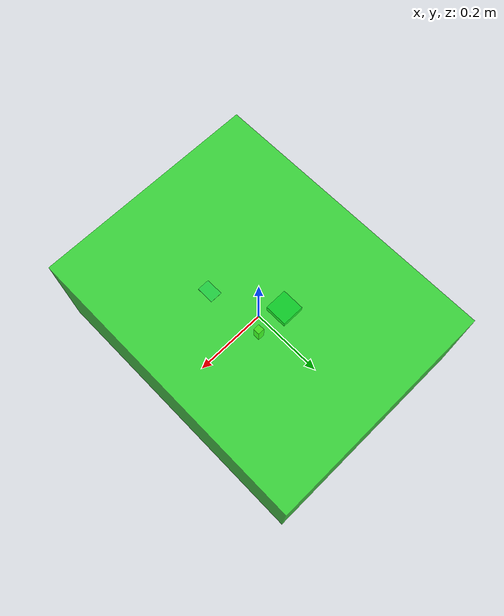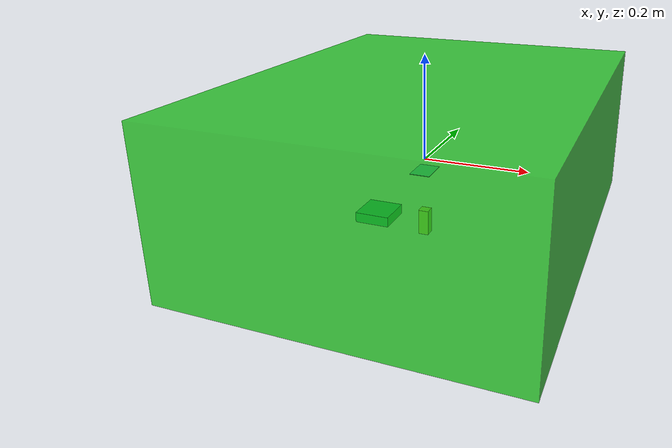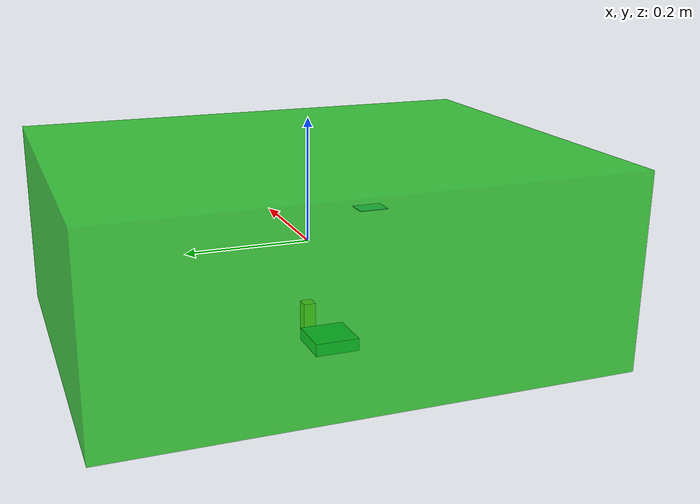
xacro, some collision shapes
<?xml version="1.0"?>
<robot xmlns:xacro="http://www.ros.org/wiki/xacro" name="mantaray">
  <material name="green">
    <color rgba="0.1 0.8 0.1 0.8"/>
  </material>
  <xacro:property name="description_pkg" value="mantaray_transforms" />

  <!-- Base Link -->
  <link name="mantaray/base_link">
    <visual>
      <geometry>
        <mesh filename="package://mantaray_transforms/meshes/visual_base_link.stl"/>
      </geometry>
      <material name="green"/>
    </visual>
    <collision>
      <geometry>
        <box size="0.63 0.81 0.31"/> <!-- Example size, adjust as needed -->
      </geometry>
    </collision>
  </link>

  <!-- IMU Sensor -->
  <link name="mantaray/imu_link">
    <visual>
      <geometry>
        <box size="0.035 0.05 0.001"/> <!-- Adjust size as needed -->
      </geometry>
    </visual>
    <collision>
      <geometry>
        <box size="0.035 0.05 0.001"/> <!-- Adjust size as needed -->
      </geometry>
    </collision>
  </link>

  <joint name="imu_joint" type="fixed">
    <parent link="mantaray/base_link"/>
    <child link="mantaray/imu_link"/>
    <origin xyz="0.05 -0.13 0.03" rpy="0 0 0"/> <!-- Adjust position inside hull -->
  </joint>

  <!-- DVL Sensor -->
  <link name="mantaray/dvl_link">
    <visual>
      <geometry>
        <box size="0.07 0.07 0.02"/> <!-- Adjust size as needed -->
      </geometry>
    </visual>
    <collision>
      <geometry>
        <box size="0.07 0.07 0.02"/> <!-- Adjust size as needed -->
      </geometry>
    </collision>
  </link>

  <joint name="dvl_joint" type="fixed">
    <parent link="mantaray/base_link"/>
    <child link="mantaray/dvl_link"/>
    <origin xyz="-0.1 0 -0.13" rpy="0 0 0"/> <!-- Adjust position to right side -->
  </joint>

  <!-- Pressure Sensor -->
  <link name="mantaray/pressure_sensor_link">
    <visual>
      <geometry>
        <box size="0.02 0.02 0.05"/> <!-- Adjust size as needed -->
      </geometry>
    </visual>
    <collision>
      <geometry>
        <box size="0.02 0.02 0.05"/> <!-- Match visual size -->
      </geometry>
    </collision>
  </link>

  <joint name="pressure_sensor_joint" type="fixed">
    <parent link="mantaray/base_link"/>
    <child link="mantaray/pressure_sensor_link"/>
    <origin xyz="0 0 -0.13" rpy="0 0 0"/> <!-- Adjust position underneath -->
  </joint>

</robot>
